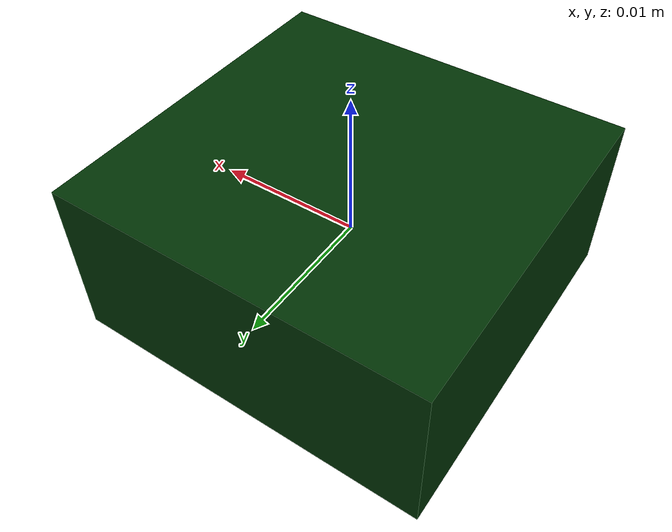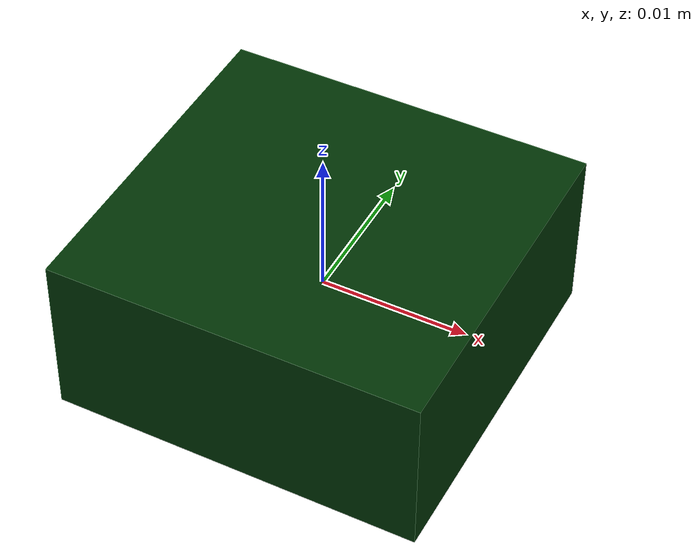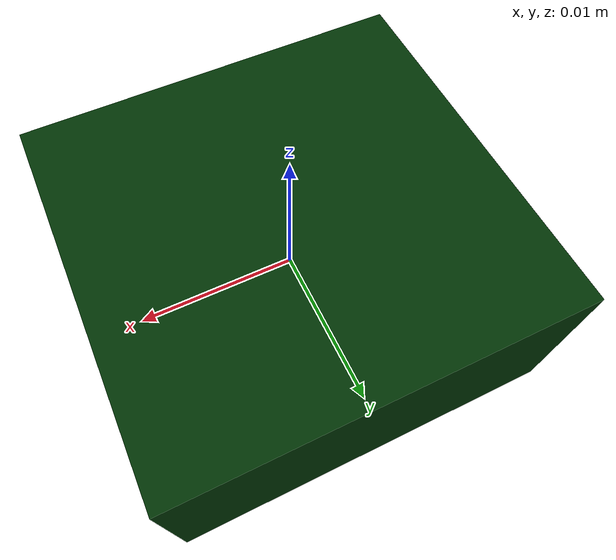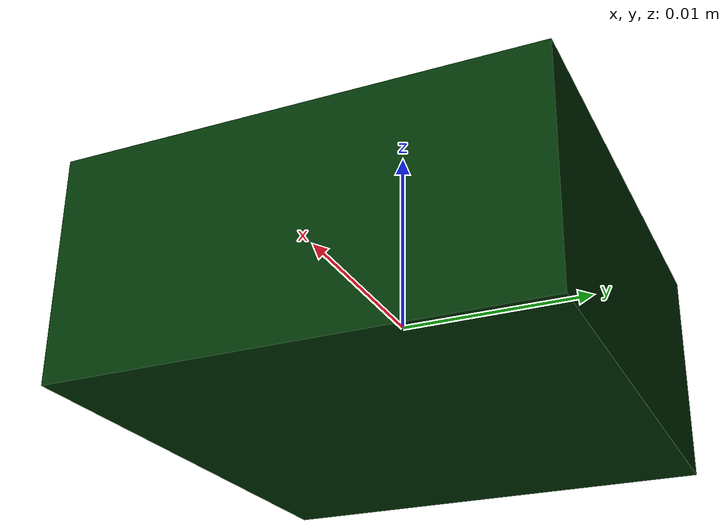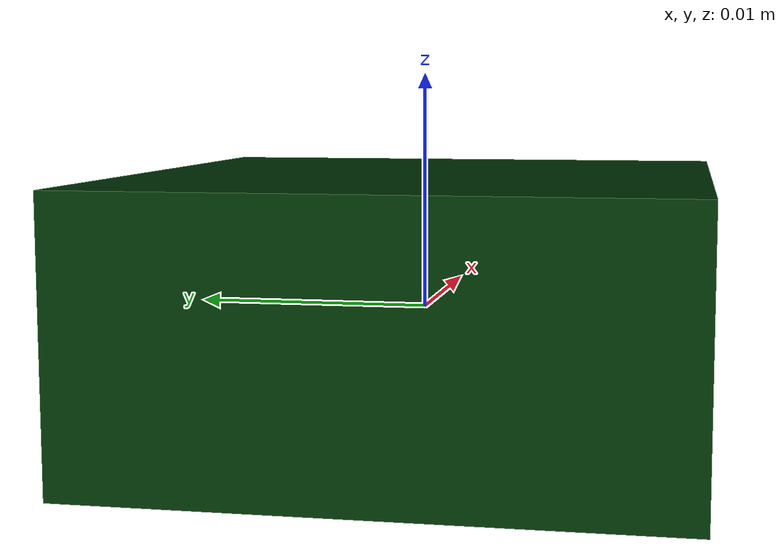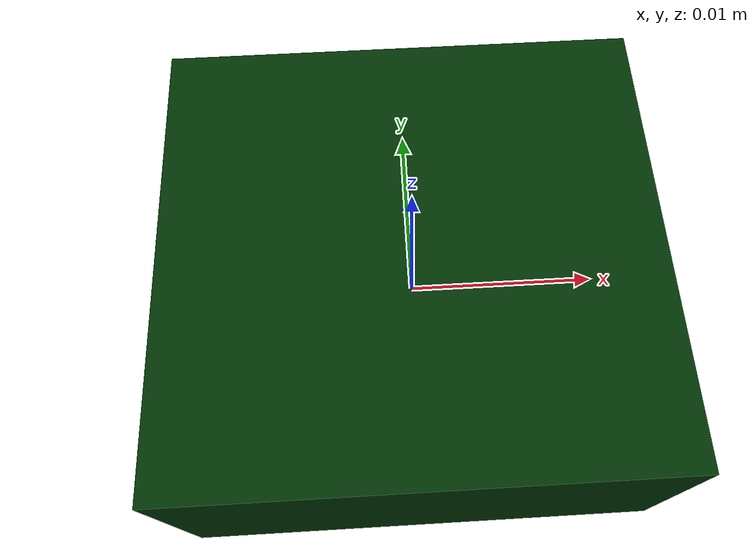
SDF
<?xml version="1.0"?>
<sdf version="1.7">
    <model name="camera">
        <link name="camera_link">
            <visual name="visual">
                <geometry>
                    <box>
                        <size>0.025 0.024 0.0115</size>
                    </box>
                </geometry>
                <material>
                    <ambient>0 0.2 0.02 1</ambient>
                    <diffuse>0 0.2 0.02 1</diffuse>
                    <specular>0 0.2 0.02 1</specular>
                </material>
            </visual>

            <collision name="collision">
                <geometry>
                    <box>
                        <size>0.025 0.024 0.0115</size>
                    </box>
                </geometry>
            </collision>

            <inertial>
                <mass>1.0</mass>
                <inertia>
                    <ixx>0.1</ixx>
                    <iyy>0.1</iyy>
                    <izz>0.1</izz>
                    <ixy>0</ixy>
                    <ixz>0</ixz>
                    <iyz>0</iyz>
                </inertia>
            </inertial>

            <sensor type="camera" name="camera">
                <pose>0 0 0 0 -1.5708 0</pose> <!-- -1.5708 -> -90deg -> to bottom -->

                <topic>camera/image_raw</topic>
                <always_on>1</always_on>
                <update_rate>100</update_rate> <!-- update rate-->
                <visualize>true</visualize>
                <camera>
                    <camera_info_topic>camera/camera_info</camera_info_topic>
                    <horizontal_fov>1.047</horizontal_fov>
                    <image>
                        <width>1080</width> <!-- resolution -->
                        <height>720</height>
                    </image>
                    <clip>
                        <near>0.1</near>
                        <far>100</far>
                    </clip>
                </camera>
                <plugin
                    filename="gz-sim-sensors-system"
                    name="gz::sim::systems::Sensors">
                    <render_engine>ogre2</render_engine>
                </plugin>
            </sensor>
        </link>
    </model>
</sdf>
